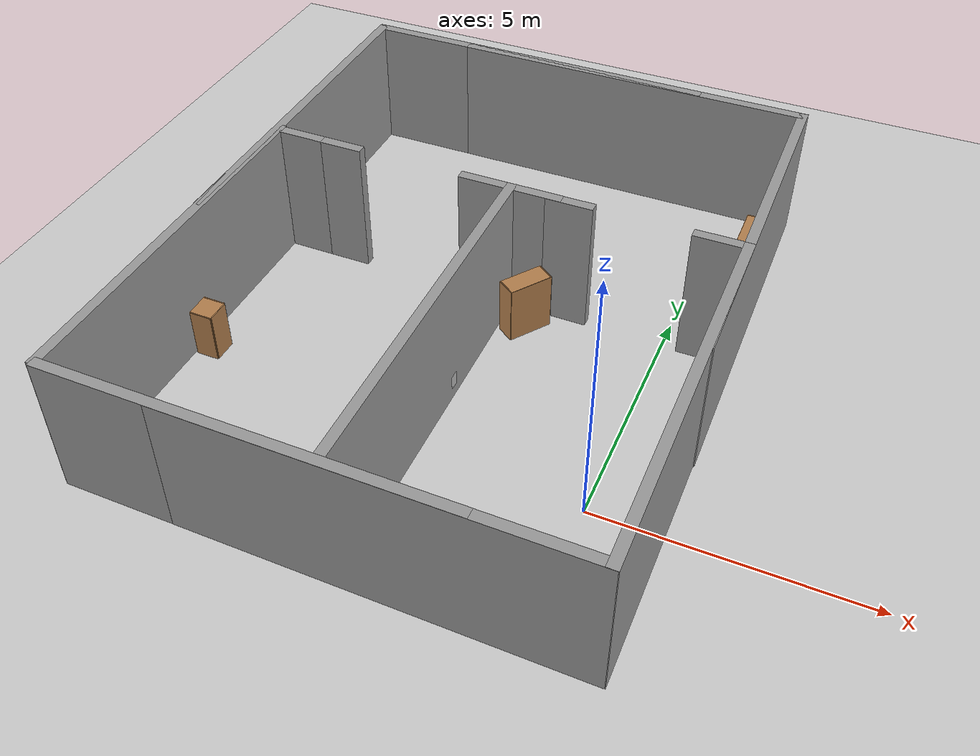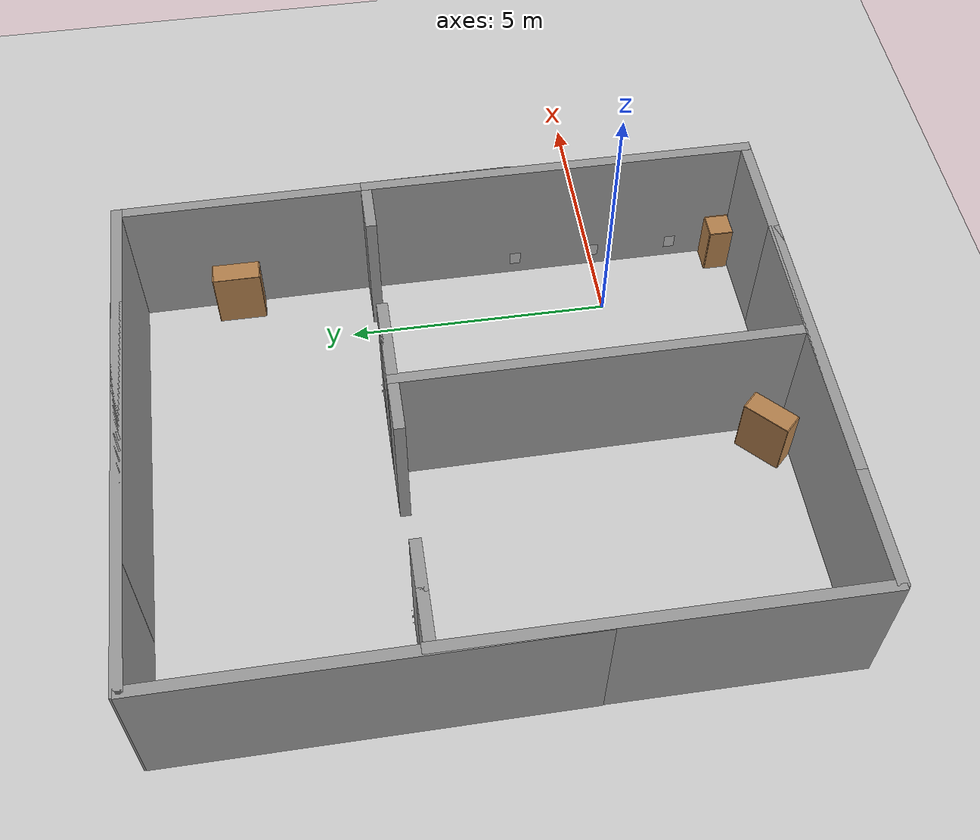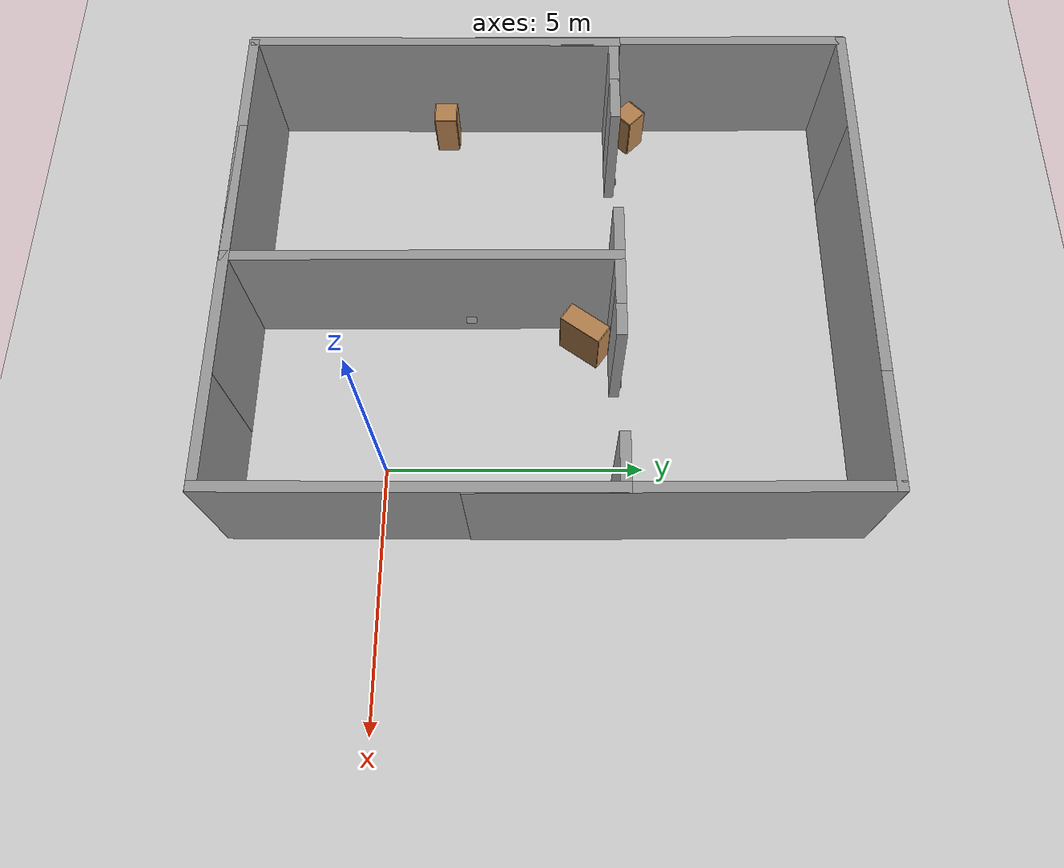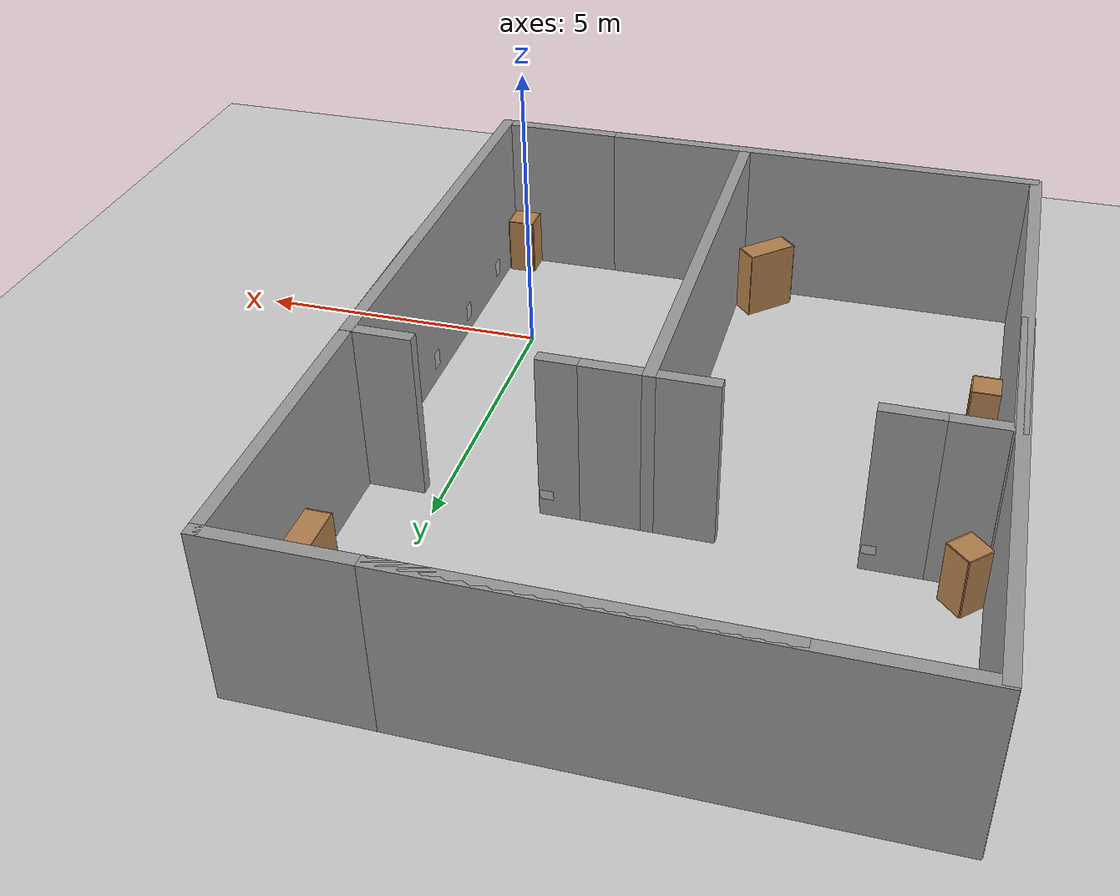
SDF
<sdf version="1.4">
 <world name="default">
  <model name="character">
   <static>1</static>
   <link name="cluedo_character::link">
    <collision name="collision">
     <geometry><plane><normal>0 0 1</normal><size>0.21 0.297</size></plane></geometry>
     <surface><friction><ode><mu>100</mu><mu2>50</mu2></ode></friction></surface>
    </collision>
    <visual name="visual">
     <pose>1.18 0 0.4 1.57 5.55112e-17 -1.57</pose>
     <cast_shadows>0</cast_shadows>
     <geometry><plane><normal>0 0 1</normal><size>0.21 0.297</size></plane></geometry>
     <material>
      <script>
       <uri>model://cluedo_character/materials/scripts</uri>
       <uri>model://cluedo_character/materials/textures</uri>
       <name>Cluedo_character/Image</name>
      </script>
     </material>
    </visual>
    <velocity_decay><linear>0</linear><angular>0</angular></velocity_decay>
   </link>
  </model>
  <model name="character2">
   <static>1</static>
   <link name="cluedo_character2::link">
    <collision name="collision">
     <geometry><plane><normal>0 0 1</normal><size>0.21 0.297</size></plane></geometry>
     <surface><friction><ode><mu>100</mu><mu2>50</mu2></ode></friction></surface>
    </collision>
    <visual name="visual">
     <pose>1.18 -1.59 0.4 1.57 5.55112e-17 -1.57</pose>
     <cast_shadows>0</cast_shadows>
     <geometry><plane><normal>0 0 1</normal><size>0.21 0.297</size></plane></geometry>
     <material>
      <script>
       <uri>model://cluedo_character2/materials/scripts</uri>
       <uri>model://cluedo_character2/materials/textures</uri>
       <name>Cluedo_character2/Image</name>
      </script>
     </material>
    </visual>
    <velocity_decay><linear>0</linear><angular>0</angular></velocity_decay>
   </link>
  </model>
  <model name="character3">
   <static>1</static>
   <link name="cluedo_character3::link">
    <collision name="collision">
     <geometry><plane><normal>0 0 1</normal><size>0.21 0.297</size></plane></geometry>
     <surface><friction><ode><mu>100</mu><mu2>50</mu2></ode></friction></surface>
    </collision>
    <visual name="visual">
     <pose>1.18 1.59 0.4 1.57 5.55112e-17 -1.57</pose>
     <cast_shadows>0</cast_shadows>
     <geometry><plane><normal>0 0 1</normal><size>0.21 0.297</size></plane></geometry>
     <material>
      <script>
       <uri>model://cluedo_character3/materials/scripts</uri>
       <uri>model://cluedo_character3/materials/textures</uri>
       <name>Cluedo_character3/Image</name>
      </script>
     </material>
    </visual>
    <velocity_decay><linear>0</linear><angular>0</angular></velocity_decay>
   </link>
  </model>
  <model name="character4">
   <static>1</static>
   <link name="cluedo_character4::link">
    <collision name="collision">
     <geometry><plane><normal>0 0 1</normal><size>0.21 0.297</size></plane></geometry>
     <surface><friction><ode><mu>100</mu><mu2>50</mu2></ode></friction></surface>
    </collision>
    <visual name="visual">
     <pose>-3.1 1.59 0.4 1.57 5.55112e-17 -4.71</pose>
     <cast_shadows>0</cast_shadows>
     <geometry><plane><normal>0 0 1</normal><size>0.21 0.297</size></plane></geometry>
     <material>
      <script>
       <uri>model://cluedo_character4/materials/scripts</uri>
       <uri>model://cluedo_character4/materials/textures</uri>
       <name>Cluedo_character4/Image</name>
      </script>
     </material>
    </visual>
    <velocity_decay><linear>0</linear><angular>0</angular></velocity_decay>
   </link>
  </model>
  <light name="sun" type="directional">
   <pose>0 0 1 0 0. 0.</pose>
   <diffuse>0.8 0.8 0.8 1</diffuse>
   <specular>1.0 1.0 1.0 1.0</specular>
   <attenuation>
    <range>1000</range>
    <constant>0.9</constant>
    <linear>0.01</linear>
    <quadratic>0.001</quadratic>
   </attenuation>
   <direction>-0 0 -1</direction>
  </light>
  <light name="light_a" type="point">
   <cast_shadows>false</cast_shadows>
   <pose>0 0 1 0 0. 0.</pose>
   <diffuse>0.2 0.2 0.2 1</diffuse>
   <specular>1.0 1.0 1.0 1.0</specular>
   <attenuation>
    <range>1000</range>
    <constant>0.9</constant>
    <linear>0.01</linear>
    <quadratic>0.001</quadratic>
   </attenuation>
  </light>
  <light name="light_b" type="point">
   <cast_shadows>false</cast_shadows>
   <pose>-7 6 1 0 0. 0.</pose>
   <diffuse>0.2 0.2 0.2 0.2</diffuse>
   <specular>0.2 0.2 0.2 0.2</specular>
   <attenuation>
    <range>1000</range>
    <constant>0.9</constant>
    <linear>0.01</linear>
    <quadratic>0.001</quadratic>
   </attenuation>
  </light>
  <light name="light_c" type="point">
   <cast_shadows>false</cast_shadows>
   <pose>-2.3 6 1 0 0. 0.</pose>
   <diffuse>0.2 0.2 0.2 1</diffuse>
   <specular>1.0 1.0 1.0 1.0</specular>
   <attenuation>
    <range>1000</range>
    <constant>0.9</constant>
    <linear>0.01</linear>
    <quadratic>0.001</quadratic>
   </attenuation>
  </light>
  <light name="light_d" type="point">
   <cast_shadows>false</cast_shadows>
   <pose>-7 2 1 0 0. 0.</pose>
   <diffuse>0.2 0.2 0.2 1</diffuse>
   <specular>1.0 1.0 1.0 1.0</specular>
   <attenuation>
    <range>1000</range>
    <constant>0.9</constant>
    <linear>0.01</linear>
    <quadratic>0.001</quadratic>
   </attenuation>
  </light>
  <model name="ground_plane">
   <static>1</static>
   <link name="link">
    <collision name="collision">
     <geometry><plane><normal>0 0 1</normal><size>100 100</size></plane></geometry>
     <surface><friction><ode><mu>100</mu><mu2>50</mu2></ode></friction></surface>
    </collision>
    <visual name="visual">
     <cast_shadows>0</cast_shadows>
     <geometry><plane><normal>0 0 1</normal><size>100 100</size></plane></geometry>
     <material>
      <script><uri>file://media/materials/scripts/gazebo.material</uri><name>Gazebo/Grey</name></script>
     </material>
    </visual>
    <velocity_decay><linear>0</linear><angular>0</angular></velocity_decay>
   </link>
  </model>
  <physics type="ode">
   <max_step_size>0.001</max_step_size>
   <real_time_factor>1</real_time_factor>
   <real_time_update_rate>1000</real_time_update_rate>
   <gravity>0 0 -9.8</gravity>
  </physics>
  <scene><ambient>0.4 0.4 0.4 1</ambient><background>0.7 0.7 0.7 1</background><shadows>1</shadows></scene>
  <spherical_coordinates>
   <surface_model>EARTH_WGS84</surface_model>
   <latitude_deg>0</latitude_deg>
   <longitude_deg>0</longitude_deg>
   <elevation>0</elevation>
   <heading_deg>0</heading_deg>
  </spherical_coordinates>
  <model name="grey_wall_0">
   <static>1</static>
   <link name="link">
    <pose>0 0 1.4 0 -0 0</pose>
    <collision name="collision"><geometry><box><size>7.5 0.2 2.8</size></box></geometry></collision>
    <visual name="visual">
     <cast_shadows>0</cast_shadows>
     <geometry><box><size>7.5 0.2 2.8</size></box></geometry>
     <material>
      <script>
       <uri>model://grey_wall/materials/scripts</uri>
       <uri>model://grey_wall/materials/textures</uri>
       <name>vrc/grey_wall</name>
      </script>
     </material>
    </visual>
    <velocity_decay><linear>0</linear><angular>0</angular></velocity_decay>
   </link>
   <pose>-4.53321 -2.83506 0 0 -0 0</pose>
  </model>
  <model name="grey_wall_1">
   <static>1</static>
   <link name="link">
    <pose>0 0 1.4 0 -0 0</pose>
    <collision name="collision"><geometry><box><size>7.5 0.2 2.8</size></box></geometry></collision>
    <visual name="visual">
     <cast_shadows>0</cast_shadows>
     <geometry><box><size>7.5 0.2 2.8</size></box></geometry>
     <material>
      <script>
       <uri>model://grey_wall/materials/scripts</uri>
       <uri>model://grey_wall/materials/textures</uri>
       <name>vrc/grey_wall</name>
      </script>
     </material>
    </visual>
    <velocity_decay><linear>0</linear><angular>0</angular></velocity_decay>
   </link>
   <pose>-8.23248 0.854179 0 0 0 -1.57181</pose>
  </model>
  <model name="grey_wall_2">
   <static>1</static>
   <link name="link">
    <pose>0 0 1.4 0 -0 0</pose>
    <collision name="collision"><geometry><box><size>7.5 0.2 2.8</size></box></geometry></collision>
    <visual name="visual">
     <cast_shadows>0</cast_shadows>
     <geometry><box><size>7.5 0.2 2.8</size></box></geometry>
     <material>
      <script>
       <uri>model://grey_wall/materials/scripts</uri>
       <uri>model://grey_wall/materials/textures</uri>
       <name>vrc/grey_wall</name>
      </script>
     </material>
    </visual>
    <velocity_decay><linear>0</linear><angular>0</angular></velocity_decay>
   </link>
   <pose>-3.20895 0.824081 0 0 -0 1.57557</pose>
  </model>
  <model name="grey_wall_3">
   <static>1</static>
   <link name="link">
    <pose>0 0 1.4 0 -0 0</pose>
    <collision name="collision"><geometry><box><size>7.5 0.2 2.8</size></box></geometry></collision>
    <visual name="visual">
     <cast_shadows>0</cast_shadows>
     <geometry><box><size>7.5 0.2 2.8</size></box></geometry>
     <material>
      <script>
       <uri>model://grey_wall/materials/scripts</uri>
       <uri>model://grey_wall/materials/textures</uri>
       <name>vrc/grey_wall</name>
      </script>
     </material>
    </visual>
    <velocity_decay><linear>0</linear><angular>0</angular></velocity_decay>
   </link>
   <pose>1.28759 0.815408 0.00212 0 0 -1.57102</pose>
  </model>
  <model name="grey_wall_4">
   <static>1</static>
   <link name="link">
    <pose>0 0 1.4 0 -0 0</pose>
    <collision name="collision"><geometry><box><size>7.5 0.2 2.8</size></box></geometry></collision>
    <visual name="visual">
     <cast_shadows>0</cast_shadows>
     <geometry><box><size>7.5 0.2 2.8</size></box></geometry>
     <material>
      <script>
       <uri>model://grey_wall/materials/scripts</uri>
       <uri>model://grey_wall/materials/textures</uri>
       <name>vrc/grey_wall</name>
      </script>
     </material>
    </visual>
    <velocity_decay><linear>0</linear><angular>0</angular></velocity_decay>
   </link>
   <pose>-2.37715 -2.83764 0 0 -0 0</pose>
  </model>
  <model name="grey_wall_5">
   <static>1</static>
   <link name="link">
    <pose>0 0 1.4 0 -0 0</pose>
    <collision name="collision"><geometry><box><size>7.5 0.2 2.8</size></box></geometry></collision>
    <visual name="visual">
     <cast_shadows>0</cast_shadows>
     <geometry><box><size>7.5 0.2 2.8</size></box></geometry>
     <material>
      <script>
       <uri>model://grey_wall/materials/scripts</uri>
       <uri>model://grey_wall/materials/textures</uri>
       <name>vrc/grey_wall</name>
      </script>
     </material>
    </visual>
    <velocity_decay><linear>0</linear><angular>0</angular></velocity_decay>
   </link>
   <pose>-2.39332 9.09609 0 0 -0 0</pose>
  </model>
  <model name="cabinet">
   <static>1</static>
   <link name="cabinet_bottom_plate">
    <inertial>
     <pose>0 0 -1 0 -0 0</pose>
     <inertia><ixx>2.05</ixx><ixy>0</ixy><ixz>0</ixz><iyy>2.05</iyy><iyz>0</iyz><izz>2.05</izz></inertia>
     <mass>25</mass>
    </inertial>
    <collision name="cabinet_bottom_plate_geom">
     <pose>0 0 0.01 0 -0 0</pose>
     <geometry><box><size>0.45 0.45 0.02</size></box></geometry>
    </collision>
    <visual name="cabinet_bottom_plate_geom_visual">
     <pose>0 0 0.01 0 -0 0</pose>
     <geometry><box><size>0.45 0.45 0.02</size></box></geometry>
     <material>
      <script><uri>file://media/materials/scripts/gazebo.material</uri><name>Gazebo/Wood</name></script>
     </material>
    </visual>
    <collision name="cabinet_bottom_plate_geom_cabinet_back_plate">
     <pose>0.235 0 0.51 0 -0 0</pose>
     <geometry><box><size>0.02 0.45 1.02</size></box></geometry>
    </collision>
    <visual name="cabinet_bottom_plate_geom_cabinet_back_plate_visual">
     <pose>0.235 0 0.51 0 -0 0</pose>
     <geometry><box><size>0.02 0.45 1.02</size></box></geometry>
     <material>
      <script><uri>file://media/materials/scripts/gazebo.material</uri><name>Gazebo/Wood</name></script>
     </material>
    </visual>
    <collision name="cabinet_bottom_plate_geom_cabinet_left_plate">
     <pose>0 0.235 0.51 0 -0 0</pose>
     <geometry><box><size>0.45 0.02 1.02</size></box></geometry>
    </collision>
    <visual name="cabinet_bottom_plate_geom_cabinet_left_plate_visual">
     <pose>0 0.235 0.51 0 -0 0</pose>
     <geometry><box><size>0.45 0.02 1.02</size></box></geometry>
     <material>
      <script><uri>file://media/materials/scripts/gazebo.material</uri><name>Gazebo/Wood</name></script>
     </material>
    </visual>
    <collision name="cabinet_bottom_plate_geom_cabinet_middle_plate">
     <pose>0 0 0.51 0 -0 0</pose>
     <geometry><box><size>0.45 0.45 0.02</size></box></geometry>
    </collision>
    <visual name="cabinet_bottom_plate_geom_cabinet_middle_plate_visual">
     <pose>0 0 0.51 0 -0 0</pose>
     <geometry><box><size>0.45 0.45 0.02</size></box></geometry>
     <material>
      <script><uri>file://media/materials/scripts/gazebo.material</uri><name>Gazebo/Wood</name></script>
     </material>
    </visual>
    <collision name="cabinet_bottom_plate_geom_cabinet_right_plate">
     <pose>0 -0.235 0.51 0 -0 0</pose>
     <geometry><box><size>0.45 0.02 1.02</size></box></geometry>
    </collision>
    <visual name="cabinet_bottom_plate_geom_cabinet_right_plate_visual">
     <pose>0 -0.235 0.51 0 -0 0</pose>
     <geometry><box><size>0.45 0.02 1.02</size></box></geometry>
     <material>
      <script><uri>file://media/materials/scripts/gazebo.material</uri><name>Gazebo/Wood</name></script>
     </material>
    </visual>
    <collision name="cabinet_bottom_plate_geom_cabinet_top_plate">
     <pose>0 0 1.01 0 -0 0</pose>
     <geometry><box><size>0.45 0.45 0.02</size></box></geometry>
    </collision>
    <visual name="cabinet_bottom_plate_geom_cabinet_top_plate_visual">
     <pose>0 0 1.01 0 -0 0</pose>
     <geometry><box><size>0.45 0.45 0.02</size></box></geometry>
     <material>
      <script><uri>file://media/materials/scripts/gazebo.material</uri><name>Gazebo/Wood</name></script>
     </material>
    </visual>
    <velocity_decay><linear>0</linear><angular>0</angular></velocity_decay>
   </link>
   <pose>0.912804 -2.47692 0.028898 0 -0 1.56926</pose>
  </model>
  <model name="bookshelf">
   <static>1</static>
   <link name="link">
    <inertial><mass>1</mass></inertial>
    <collision name="back">
     <pose>0 0.005 0.6 0 -0 0</pose>
     <geometry><box><size>0.9 0.01 1.2</size></box></geometry>
    </collision>
    <visual name="visual1">
     <pose>0 0.005 0.6 0 -0 0</pose>
     <geometry><box><size>0.9 0.01 1.2</size></box></geometry>
     <material>
      <script><uri>file://media/materials/scripts/gazebo.material</uri><name>Gazebo/Wood</name></script>
     </material>
    </visual>
    <collision name="left_side">
     <pose>0.45 -0.195 0.6 0 -0 0</pose>
     <geometry><box><size>0.02 0.4 1.2</size></box></geometry>
    </collision>
    <visual name="visual2">
     <pose>0.45 -0.195 0.6 0 -0 0</pose>
     <geometry><box><size>0.02 0.4 1.2</size></box></geometry>
     <material>
      <script><uri>file://media/materials/scripts/gazebo.material</uri><name>Gazebo/Wood</name></script>
     </material>
    </visual>
    <collision name="right_side">
     <pose>-0.45 -0.195 0.6 0 -0 0</pose>
     <geometry><box><size>0.02 0.4 1.2</size></box></geometry>
    </collision>
    <visual name="visual3">
     <pose>-0.45 -0.195 0.6 0 -0 0</pose>
     <geometry><box><size>0.02 0.4 1.2</size></box></geometry>
     <material>
      <script><uri>file://media/materials/scripts/gazebo.material</uri><name>Gazebo/Wood</name></script>
     </material>
    </visual>
    <collision name="bottom">
     <pose>0 -0.195 0.03 0 -0 0</pose>
     <geometry><box><size>0.88 0.4 0.06</size></box></geometry>
    </collision>
    <visual name="visual4">
     <pose>0 -0.195 0.03 0 -0 0</pose>
     <geometry><box><size>0.88 0.4 0.06</size></box></geometry>
     <material>
      <script><uri>file://media/materials/scripts/gazebo.material</uri><name>Gazebo/Wood</name></script>
     </material>
    </visual>
    <collision name="top">
     <pose>0 -0.195 1.19 0 -0 0</pose>
     <geometry><box><size>0.88 0.4 0.02</size></box></geometry>
    </collision>
    <visual name="visual5">
     <pose>0 -0.195 1.19 0 -0 0</pose>
     <geometry><box><size>0.88 0.4 0.02</size></box></geometry>
     <material>
      <script><uri>file://media/materials/scripts/gazebo.material</uri><name>Gazebo/Wood</name></script>
     </material>
    </visual>
    <collision name="low_shelf">
     <pose>0 -0.195 0.43 0 -0 0</pose>
     <geometry><box><size>0.88 0.4 0.02</size></box></geometry>
    </collision>
    <visual name="visual6">
     <pose>0 -0.195 0.43 0 -0 0</pose>
     <geometry><box><size>0.88 0.4 0.02</size></box></geometry>
     <material>
      <script><uri>file://media/materials/scripts/gazebo.material</uri><name>Gazebo/Wood</name></script>
     </material>
    </visual>
    <collision name="high_shelf">
     <pose>0 -0.195 0.8 0 -0 0</pose>
     <geometry><box><size>0.88 0.4 0.02</size></box></geometry>
    </collision>
    <visual name="visual7">
     <pose>0 -0.195 0.8 0 -0 0</pose>
     <geometry><box><size>0.88 0.4 0.02</size></box></geometry>
     <material>
      <script><uri>file://media/materials/scripts/gazebo.material</uri><name>Gazebo/Wood</name></script>
     </material>
    </visual>
    <velocity_decay><linear>0</linear><angular>0</angular></velocity_decay>
   </link>
   <pose>-2.47728 3.76602 0 0 0 -2.18701</pose>
  </model>
  <model name="grey_wall">
   <static>1</static>
   <link name="link">
    <pose>0 0 1.4 0 -0 0</pose>
    <collision name="collision"><geometry><box><size>7.5 0.2 2.8</size></box></geometry></collision>
    <visual name="visual">
     <cast_shadows>0</cast_shadows>
     <geometry><box><size>7.5 0.2 2.8</size></box></geometry>
     <material>
      <script>
       <uri>model://grey_wall/materials/scripts</uri>
       <uri>model://grey_wall/materials/textures</uri>
       <name>vrc/grey_wall</name>
      </script>
     </material>
    </visual>
    <velocity_decay><linear>0</linear><angular>0</angular></velocity_decay>
   </link>
   <pose>1.28254 5.43803 0 0 0 -1.56399</pose>
  </model>
  <model name="grey_wall_8">
   <static>1</static>
   <link name="link">
    <pose>0 0 1.4 0 -0 0</pose>
    <collision name="collision"><geometry><box><size>7.5 0.2 2.8</size></box></geometry></collision>
    <visual name="visual">
     <cast_shadows>0</cast_shadows>
     <geometry><box><size>7.5 0.2 2.8</size></box></geometry>
     <material>
      <script>
       <uri>model://grey_wall/materials/scripts</uri>
       <uri>model://grey_wall/materials/textures</uri>
       <name>vrc/grey_wall</name>
      </script>
     </material>
    </visual>
    <velocity_decay><linear>0</linear><angular>0</angular></velocity_decay>
   </link>
   <pose>-8.25909 5.41188 0 0 -0 1.5757</pose>
  </model>
  <model name="grey_wall_9">
   <static>1</static>
   <link name="link">
    <pose>0 0 1.4 0 -0 0</pose>
    <collision name="collision"><geometry><box><size>7.5 0.2 2.8</size></box></geometry></collision>
    <visual name="visual">
     <cast_shadows>0</cast_shadows>
     <geometry><box><size>7.5 0.2 2.8</size></box></geometry>
     <material>
      <script>
       <uri>model://grey_wall/materials/scripts</uri>
       <uri>model://grey_wall/materials/textures</uri>
       <name>vrc/grey_wall</name>
      </script>
     </material>
    </visual>
    <velocity_decay><linear>0</linear><angular>0</angular></velocity_decay>
   </link>
   <pose>-4.6171 9.09785 0 0 -0 0</pose>
  </model>
  <model name="cabinet_0">
   <static>1</static>
   <link name="cabinet_bottom_plate">
    <inertial>
     <pose>0 0 -1 0 -0 0</pose>
     <inertia><ixx>2.05</ixx><ixy>0</ixy><ixz>0</ixz><iyy>2.05</iyy><iyz>0</iyz><izz>2.05</izz></inertia>
     <mass>25</mass>
    </inertial>
    <collision name="cabinet_bottom_plate_geom">
     <pose>0 0 0.01 0 -0 0</pose>
     <geometry><box><size>0.45 0.45 0.02</size></box></geometry>
    </collision>
    <visual name="cabinet_bottom_plate_geom_visual">
     <pose>0 0 0.01 0 -0 0</pose>
     <geometry><box><size>0.45 0.45 0.02</size></box></geometry>
     <material>
      <script><uri>file://media/materials/scripts/gazebo.material</uri><name>Gazebo/Wood</name></script>
     </material>
    </visual>
    <collision name="cabinet_bottom_plate_geom_cabinet_back_plate">
     <pose>0.235 0 0.51 0 -0 0</pose>
     <geometry><box><size>0.02 0.45 1.02</size></box></geometry>
    </collision>
    <visual name="cabinet_bottom_plate_geom_cabinet_back_plate_visual">
     <pose>0.235 0 0.51 0 -0 0</pose>
     <geometry><box><size>0.02 0.45 1.02</size></box></geometry>
     <material>
      <script><uri>file://media/materials/scripts/gazebo.material</uri><name>Gazebo/Wood</name></script>
     </material>
    </visual>
    <collision name="cabinet_bottom_plate_geom_cabinet_left_plate">
     <pose>0 0.235 0.51 0 -0 0</pose>
     <geometry><box><size>0.45 0.02 1.02</size></box></geometry>
    </collision>
    <visual name="cabinet_bottom_plate_geom_cabinet_left_plate_visual">
     <pose>0 0.235 0.51 0 -0 0</pose>
     <geometry><box><size>0.45 0.02 1.02</size></box></geometry>
     <material>
      <script><uri>file://media/materials/scripts/gazebo.material</uri><name>Gazebo/Wood</name></script>
     </material>
    </visual>
    <collision name="cabinet_bottom_plate_geom_cabinet_middle_plate">
     <pose>0 0 0.51 0 -0 0</pose>
     <geometry><box><size>0.45 0.45 0.02</size></box></geometry>
    </collision>
    <visual name="cabinet_bottom_plate_geom_cabinet_middle_plate_visual">
     <pose>0 0 0.51 0 -0 0</pose>
     <geometry><box><size>0.45 0.45 0.02</size></box></geometry>
     <material>
      <script><uri>file://media/materials/scripts/gazebo.material</uri><name>Gazebo/Wood</name></script>
     </material>
    </visual>
    <collision name="cabinet_bottom_plate_geom_cabinet_right_plate">
     <pose>0 -0.235 0.51 0 -0 0</pose>
     <geometry><box><size>0.45 0.02 1.02</size></box></geometry>
    </collision>
    <visual name="cabinet_bottom_plate_geom_cabinet_right_plate_visual">
     <pose>0 -0.235 0.51 0 -0 0</pose>
     <geometry><box><size>0.45 0.02 1.02</size></box></geometry>
     <material>
      <script><uri>file://media/materials/scripts/gazebo.material</uri><name>Gazebo/Wood</name></script>
     </material>
    </visual>
    <collision name="cabinet_bottom_plate_geom_cabinet_top_plate">
     <pose>0 0 1.01 0 -0 0</pose>
     <geometry><box><size>0.45 0.45 0.02</size></box></geometry>
    </collision>
    <visual name="cabinet_bottom_plate_geom_cabinet_top_plate_visual">
     <pose>0 0 1.01 0 -0 0</pose>
     <geometry><box><size>0.45 0.45 0.02</size></box></geometry>
     <material>
      <script><uri>file://media/materials/scripts/gazebo.material</uri><name>Gazebo/Wood</name></script>
     </material>
    </visual>
    <velocity_decay><linear>0</linear><angular>0</angular></velocity_decay>
   </link>
   <pose>-7.86683 0.925523 0 0 -0 0</pose>
  </model>
  <model name="bookshelf_0">
   <static>1</static>
   <link name="link">
    <inertial><mass>1</mass></inertial>
    <collision name="back">
     <pose>0 0.005 0.6 0 -0 0</pose>
     <geometry><box><size>0.9 0.01 1.2</size></box></geometry>
    </collision>
    <visual name="visual1">
     <pose>0 0.005 0.6 0 -0 0</pose>
     <geometry><box><size>0.9 0.01 1.2</size></box></geometry>
     <material>
      <script><uri>file://media/materials/scripts/gazebo.material</uri><name>Gazebo/Wood</name></script>
     </material>
    </visual>
    <collision name="left_side">
     <pose>0.45 -0.195 0.6 0 -0 0</pose>
     <geometry><box><size>0.02 0.4 1.2</size></box></geometry>
    </collision>
    <visual name="visual2">
     <pose>0.45 -0.195 0.6 0 -0 0</pose>
     <geometry><box><size>0.02 0.4 1.2</size></box></geometry>
     <material>
      <script><uri>file://media/materials/scripts/gazebo.material</uri><name>Gazebo/Wood</name></script>
     </material>
    </visual>
    <collision name="right_side">
     <pose>-0.45 -0.195 0.6 0 -0 0</pose>
     <geometry><box><size>0.02 0.4 1.2</size></box></geometry>
    </collision>
    <visual name="visual3">
     <pose>-0.45 -0.195 0.6 0 -0 0</pose>
     <geometry><box><size>0.02 0.4 1.2</size></box></geometry>
     <material>
      <script><uri>file://media/materials/scripts/gazebo.material</uri><name>Gazebo/Wood</name></script>
     </material>
    </visual>
    <collision name="bottom">
     <pose>0 -0.195 0.03 0 -0 0</pose>
     <geometry><box><size>0.88 0.4 0.06</size></box></geometry>
    </collision>
    <visual name="visual4">
     <pose>0 -0.195 0.03 0 -0 0</pose>
     <geometry><box><size>0.88 0.4 0.06</size></box></geometry>
     <material>
      <script><uri>file://media/materials/scripts/gazebo.material</uri><name>Gazebo/Wood</name></script>
     </material>
    </visual>
    <collision name="top">
     <pose>0 -0.195 1.19 0 -0 0</pose>
     <geometry><box><size>0.88 0.4 0.02</size></box></geometry>
    </collision>
    <visual name="visual5">
     <pose>0 -0.195 1.19 0 -0 0</pose>
     <geometry><box><size>0.88 0.4 0.02</size></box></geometry>
     <material>
      <script><uri>file://media/materials/scripts/gazebo.material</uri><name>Gazebo/Wood</name></script>
     </material>
    </visual>
    <collision name="low_shelf">
     <pose>0 -0.195 0.43 0 -0 0</pose>
     <geometry><box><size>0.88 0.4 0.02</size></box></geometry>
    </collision>
    <visual name="visual6">
     <pose>0 -0.195 0.43 0 -0 0</pose>
     <geometry><box><size>0.88 0.4 0.02</size></box></geometry>
     <material>
      <script><uri>file://media/materials/scripts/gazebo.material</uri><name>Gazebo/Wood</name></script>
     </material>
    </visual>
    <collision name="high_shelf">
     <pose>0 -0.195 0.8 0 -0 0</pose>
     <geometry><box><size>0.88 0.4 0.02</size></box></geometry>
    </collision>
    <visual name="visual7">
     <pose>0 -0.195 0.8 0 -0 0</pose>
     <geometry><box><size>0.88 0.4 0.02</size></box></geometry>
     <material>
      <script><uri>file://media/materials/scripts/gazebo.material</uri><name>Gazebo/Wood</name></script>
     </material>
    </visual>
    <velocity_decay><linear>0</linear><angular>0</angular></velocity_decay>
   </link>
   <pose>-3.90366 -2.11997 0 0 -0 0.763607</pose>
  </model>
  <model name="grey_wall_small">
   <static>1</static>
   <link name="link">
    <pose>0 0 1.4 0 -0 0</pose>
    <collision name="collision"><geometry><box><size>0.9375 0.2 2.8</size></box></geometry></collision>
    <visual name="visual">
     <cast_shadows>0</cast_shadows>
     <geometry><box><size>0.9375 0.2 2.8</size></box></geometry>
     <material>
      <script>
       <uri>model://grey_wall_small/materials/scripts</uri>
       <uri>model://grey_wall_small/materials/textures</uri>
       <name>vrc/grey_wall_small</name>
      </script>
     </material>
    </visual>
    <velocity_decay><linear>0</linear><angular>0</angular></velocity_decay>
   </link>
   <pose>-2.66651 4.47404 0 0 -0 0</pose>
  </model>
  <model name="grey_wall_small_0">
   <static>1</static>
   <link name="link">
    <pose>0 0 1.4 0 -0 0</pose>
    <collision name="collision"><geometry><box><size>0.9375 0.2 2.8</size></box></geometry></collision>
    <visual name="visual">
     <cast_shadows>0</cast_shadows>
     <geometry><box><size>0.9375 0.2 2.8</size></box></geometry>
     <material>
      <script>
       <uri>model://grey_wall_small/materials/scripts</uri>
       <uri>model://grey_wall_small/materials/textures</uri>
       <name>vrc/grey_wall_small</name>
      </script>
     </material>
    </visual>
    <velocity_decay><linear>0</linear><angular>0</angular></velocity_decay>
   </link>
   <pose>-3.79075 4.47218 0 0 -0 0</pose>
  </model>
  <model name="grey_wall_small_1">
   <static>1</static>
   <link name="link">
    <pose>0 0 1.4 0 -0 0</pose>
    <collision name="collision"><geometry><box><size>0.9375 0.2 2.8</size></box></geometry></collision>
    <visual name="visual">
     <cast_shadows>0</cast_shadows>
     <geometry><box><size>0.9375 0.2 2.8</size></box></geometry>
     <material>
      <script>
       <uri>model://grey_wall_small/materials/scripts</uri>
       <uri>model://grey_wall_small/materials/textures</uri>
       <name>vrc/grey_wall_small</name>
      </script>
     </material>
    </visual>
    <velocity_decay><linear>0</linear><angular>0</angular></velocity_decay>
   </link>
   <pose>-2.03511 4.47305 0 0 -0 0</pose>
  </model>
  <model name="grey_wall_small_2">
   <static>1</static>
   <link name="link">
    <pose>0 0 1.4 0 -0 0</pose>
    <collision name="collision"><geometry><box><size>0.9375 0.2 2.8</size></box></geometry></collision>
    <visual name="visual">
     <cast_shadows>0</cast_shadows>
     <geometry><box><size>0.9375 0.2 2.8</size></box></geometry>
     <material>
      <script>
       <uri>model://grey_wall_small/materials/scripts</uri>
       <uri>model://grey_wall_small/materials/textures</uri>
       <name>vrc/grey_wall_small</name>
      </script>
     </material>
    </visual>
    <velocity_decay><linear>0</linear><angular>0</angular></velocity_decay>
   </link>
   <pose>0.747906 4.47091 0 0 -0 0</pose>
  </model>
  <model name="grey_wall_small_3">
   <static>1</static>
   <link name="link">
    <pose>0 0 1.4 0 -0 0</pose>
    <collision name="collision"><geometry><box><size>0.9375 0.2 2.8</size></box></geometry></collision>
    <visual name="visual">
     <cast_shadows>0</cast_shadows>
     <geometry><box><size>0.9375 0.2 2.8</size></box></geometry>
     <material>
      <script>
       <uri>model://grey_wall_small/materials/scripts</uri>
       <uri>model://grey_wall_small/materials/textures</uri>
       <name>vrc/grey_wall_small</name>
      </script>
     </material>
    </visual>
    <velocity_decay><linear>0</linear><angular>0</angular></velocity_decay>
   </link>
   <pose>-7.6898 4.46929 0 0 -0 0</pose>
  </model>
  <model name="grey_wall_small_4">
   <static>1</static>
   <link name="link">
    <pose>0 0 1.4 0 -0 0</pose>
    <collision name="collision"><geometry><box><size>0.9375 0.2 2.8</size></box></geometry></collision>
    <visual name="visual">
     <cast_shadows>0</cast_shadows>
     <geometry><box><size>0.9375 0.2 2.8</size></box></geometry>
     <material>
      <script>
       <uri>model://grey_wall_small/materials/scripts</uri>
       <uri>model://grey_wall_small/materials/textures</uri>
       <name>vrc/grey_wall_small</name>
      </script>
     </material>
    </visual>
    <velocity_decay><linear>0</linear><angular>0</angular></velocity_decay>
   </link>
   <pose>-6.82457 4.46929 0 0 -0 0</pose>
  </model>
  <model name="red_image">
   <static>1</static>
   <link name="link">
    <collision name="collision">
     <geometry><plane><normal>0 0 1</normal><size>0.21 0.16</size></plane></geometry>
     <surface><friction><ode><mu>100</mu><mu2>50</mu2></ode></friction></surface>
    </collision>
    <visual name="visual">
     <pose>-6.48 4.6 0.4 1.57 4.33681e-19 3.14</pose>
     <cast_shadows>0</cast_shadows>
     <geometry><plane><normal>0 0 1</normal><size>0.21 0.16</size></plane></geometry>
     <material>
      <script>
       <uri>model://red_image/materials/scripts</uri>
       <uri>model://red_image/materials/textures</uri>
       <name>red_image/Image</name>
      </script>
     </material>
    </visual>
    <velocity_decay><linear>0</linear><angular>0</angular></velocity_decay>
   </link>
  </model>
  <model name="green_image">
   <static>1</static>
   <link name="link">
    <collision name="collision">
     <geometry><plane><normal>0 0 1</normal><size>0.21 0.16</size></plane></geometry>
     <surface><friction><ode><mu>100</mu><mu2>50</mu2></ode></friction></surface>
    </collision>
    <visual name="visual">
     <pose>-1.7 4.6 0.4 1.57 4.33681e-19 3.14</pose>
     <cast_shadows>0</cast_shadows>
     <geometry><plane><normal>0 0 1</normal><size>0.21 0.16</size></plane></geometry>
     <material>
      <script>
       <uri>model://green_image/materials/scripts</uri>
       <uri>model://green_image/materials/textures</uri>
       <name>green_image/Image</name>
      </script>
     </material>
    </visual>
    <velocity_decay><linear>0</linear><angular>0</angular></velocity_decay>
   </link>
  </model>
  <model name="bookshelf_1">
   <static>1</static>
   <link name="link">
    <inertial><mass>1</mass></inertial>
    <collision name="back">
     <pose>0 0.005 0.6 0 -0 0</pose>
     <geometry><box><size>0.9 0.01 1.2</size></box></geometry>
    </collision>
    <visual name="visual1">
     <pose>0 0.005 0.6 0 -0 0</pose>
     <geometry><box><size>0.9 0.01 1.2</size></box></geometry>
     <material>
      <script><uri>file://media/materials/scripts/gazebo.material</uri><name>Gazebo/Wood</name></script>
     </material>
    </visual>
    <collision name="left_side">
     <pose>0.45 -0.195 0.6 0 -0 0</pose>
     <geometry><box><size>0.02 0.4 1.2</size></box></geometry>
    </collision>
    <visual name="visual2">
     <pose>0.45 -0.195 0.6 0 -0 0</pose>
     <geometry><box><size>0.02 0.4 1.2</size></box></geometry>
     <material>
      <script><uri>file://media/materials/scripts/gazebo.material</uri><name>Gazebo/Wood</name></script>
     </material>
    </visual>
    <collision name="right_side">
     <pose>-0.45 -0.195 0.6 0 -0 0</pose>
     <geometry><box><size>0.02 0.4 1.2</size></box></geometry>
    </collision>
    <visual name="visual3">
     <pose>-0.45 -0.195 0.6 0 -0 0</pose>
     <geometry><box><size>0.02 0.4 1.2</size></box></geometry>
     <material>
      <script><uri>file://media/materials/scripts/gazebo.material</uri><name>Gazebo/Wood</name></script>
     </material>
    </visual>
    <collision name="bottom">
     <pose>0 -0.195 0.03 0 -0 0</pose>
     <geometry><box><size>0.88 0.4 0.06</size></box></geometry>
    </collision>
    <visual name="visual4">
     <pose>0 -0.195 0.03 0 -0 0</pose>
     <geometry><box><size>0.88 0.4 0.06</size></box></geometry>
     <material>
      <script><uri>file://media/materials/scripts/gazebo.material</uri><name>Gazebo/Wood</name></script>
     </material>
    </visual>
    <collision name="top">
     <pose>0 -0.195 1.19 0 -0 0</pose>
     <geometry><box><size>0.88 0.4 0.02</size></box></geometry>
    </collision>
    <visual name="visual5">
     <pose>0 -0.195 1.19 0 -0 0</pose>
     <geometry><box><size>0.88 0.4 0.02</size></box></geometry>
     <material>
      <script><uri>file://media/materials/scripts/gazebo.material</uri><name>Gazebo/Wood</name></script>
     </material>
    </visual>
    <collision name="low_shelf">
     <pose>0 -0.195 0.43 0 -0 0</pose>
     <geometry><box><size>0.88 0.4 0.02</size></box></geometry>
    </collision>
    <visual name="visual6">
     <pose>0 -0.195 0.43 0 -0 0</pose>
     <geometry><box><size>0.88 0.4 0.02</size></box></geometry>
     <material>
      <script><uri>file://media/materials/scripts/gazebo.material</uri><name>Gazebo/Wood</name></script>
     </material>
    </visual>
    <collision name="high_shelf">
     <pose>0 -0.195 0.8 0 -0 0</pose>
     <geometry><box><size>0.88 0.4 0.02</size></box></geometry>
    </collision>
    <visual name="visual7">
     <pose>0 -0.195 0.8 0 -0 0</pose>
     <geometry><box><size>0.88 0.4 0.02</size></box></geometry>
     <material>
      <script><uri>file://media/materials/scripts/gazebo.material</uri><name>Gazebo/Wood</name></script>
     </material>
    </visual>
    <velocity_decay><linear>0</linear><angular>0</angular></velocity_decay>
   </link>
   <pose>0.745914 7.12361 0 0 -0 1.56891</pose>
  </model>
  <model name="cabinet_1">
   <static>1</static>
   <link name="cabinet_bottom_plate">
    <inertial>
     <pose>0 0 -1 0 -0 0</pose>
     <inertia><ixx>2.05</ixx><ixy>0</ixy><ixz>0</ixz><iyy>2.05</iyy><iyz>0</iyz><izz>2.05</izz></inertia>
     <mass>25</mass>
    </inertial>
    <collision name="cabinet_bottom_plate_geom">
     <pose>0 0 0.01 0 -0 0</pose>
     <geometry><box><size>0.45 0.45 0.02</size></box></geometry>
    </collision>
    <visual name="cabinet_bottom_plate_geom_visual">
     <pose>0 0 0.01 0 -0 0</pose>
     <geometry><box><size>0.45 0.45 0.02</size></box></geometry>
     <material>
      <script><uri>file://media/materials/scripts/gazebo.material</uri><name>Gazebo/Wood</name></script>
     </material>
    </visual>
    <collision name="cabinet_bottom_plate_geom_cabinet_back_plate">
     <pose>0.235 0 0.51 0 -0 0</pose>
     <geometry><box><size>0.02 0.45 1.02</size></box></geometry>
    </collision>
    <visual name="cabinet_bottom_plate_geom_cabinet_back_plate_visual">
     <pose>0.235 0 0.51 0 -0 0</pose>
     <geometry><box><size>0.02 0.45 1.02</size></box></geometry>
     <material>
      <script><uri>file://media/materials/scripts/gazebo.material</uri><name>Gazebo/Wood</name></script>
     </material>
    </visual>
    <collision name="cabinet_bottom_plate_geom_cabinet_left_plate">
     <pose>0 0.235 0.51 0 -0 0</pose>
     <geometry><box><size>0.45 0.02 1.02</size></box></geometry>
    </collision>
    <visual name="cabinet_bottom_plate_geom_cabinet_left_plate_visual">
     <pose>0 0.235 0.51 0 -0 0</pose>
     <geometry><box><size>0.45 0.02 1.02</size></box></geometry>
     <material>
      <script><uri>file://media/materials/scripts/gazebo.material</uri><name>Gazebo/Wood</name></script>
     </material>
    </visual>
    <collision name="cabinet_bottom_plate_geom_cabinet_middle_plate">
     <pose>0 0 0.51 0 -0 0</pose>
     <geometry><box><size>0.45 0.45 0.02</size></box></geometry>
    </collision>
    <visual name="cabinet_bottom_plate_geom_cabinet_middle_plate_visual">
     <pose>0 0 0.51 0 -0 0</pose>
     <geometry><box><size>0.45 0.45 0.02</size></box></geometry>
     <material>
      <script><uri>file://media/materials/scripts/gazebo.material</uri><name>Gazebo/Wood</name></script>
     </material>
    </visual>
    <collision name="cabinet_bottom_plate_geom_cabinet_right_plate">
     <pose>0 -0.235 0.51 0 -0 0</pose>
     <geometry><box><size>0.45 0.02 1.02</size></box></geometry>
    </collision>
    <visual name="cabinet_bottom_plate_geom_cabinet_right_plate_visual">
     <pose>0 -0.235 0.51 0 -0 0</pose>
     <geometry><box><size>0.45 0.02 1.02</size></box></geometry>
     <material>
      <script><uri>file://media/materials/scripts/gazebo.material</uri><name>Gazebo/Wood</name></script>
     </material>
    </visual>
    <collision name="cabinet_bottom_plate_geom_cabinet_top_plate">
     <pose>0 0 1.01 0 -0 0</pose>
     <geometry><box><size>0.45 0.45 0.02</size></box></geometry>
    </collision>
    <visual name="cabinet_bottom_plate_geom_cabinet_top_plate_visual">
     <pose>0 0 1.01 0 -0 0</pose>
     <geometry><box><size>0.45 0.45 0.02</size></box></geometry>
     <material>
      <script><uri>file://media/materials/scripts/gazebo.material</uri><name>Gazebo/Wood</name></script>
     </material>
    </visual>
    <velocity_decay><linear>0</linear><angular>0</angular></velocity_decay>
   </link>
   <pose>-7.8455 4.90192 0 0 -0 0.78721</pose>
  </model>
 </world>
</sdf>
